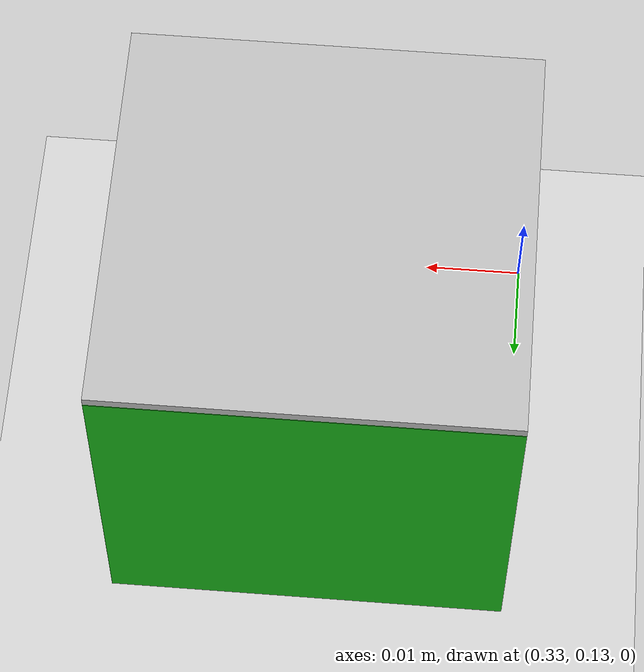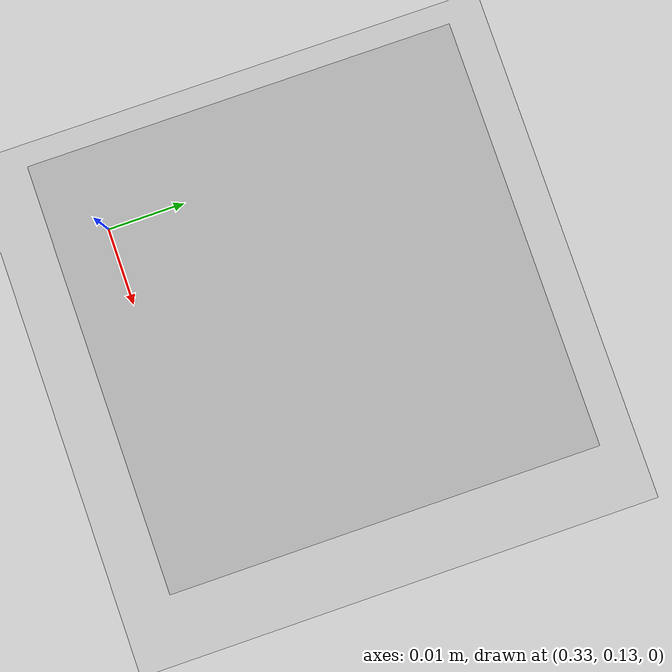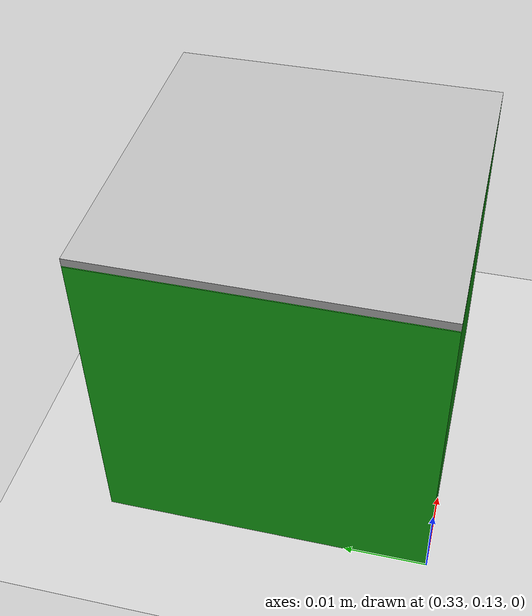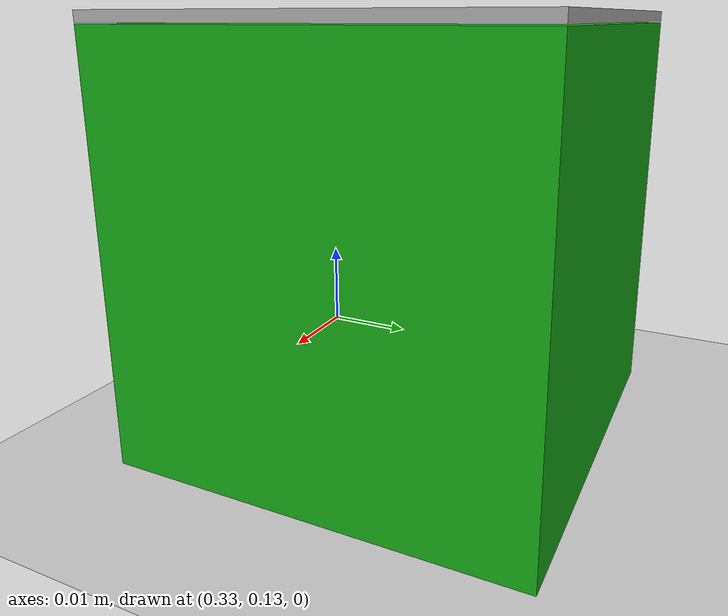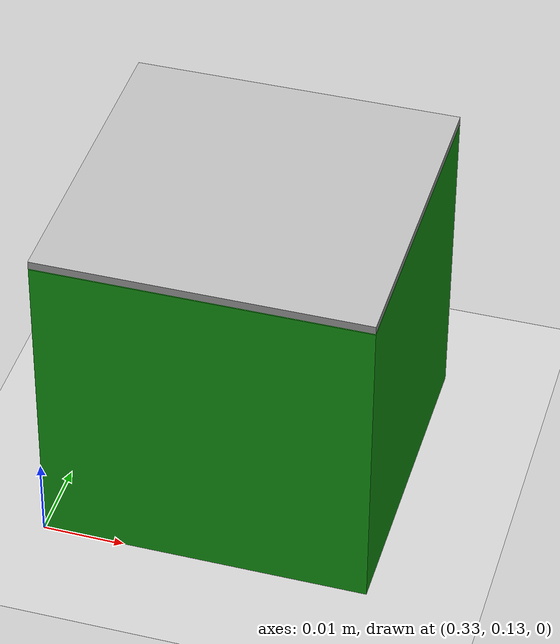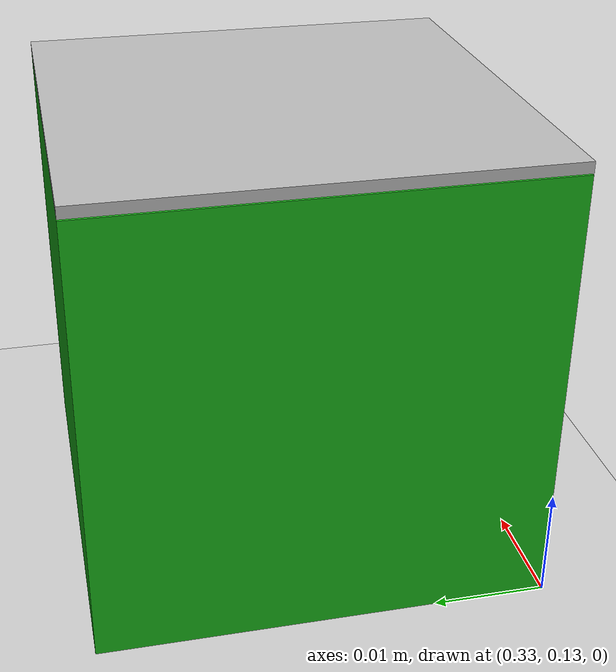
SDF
<?xml version="1.0" ?>
<sdf version="1.6">
  <world name="default">

    <!-- Standard light + ground so things don't fall forever. -->
    <include><uri>model://sun</uri></include>
    <include><uri>model://ground_plane</uri></include>

    <model name="green_block">
      <pose>0.35 0.15 0.02 0 0 0</pose>
      <link name="link">
        <inertial>
          <mass>0.05</mass>
          <inertia ixx="1.3e-5" ixy="0" ixz="0" iyy="1.3e-5" iyz="0" izz="1.3e-5"/>
        </inertial>
        <collision name="collision">
          <geometry><box><size>0.04 0.04 0.04</size></box></geometry>
          <surface>
            <friction><ode><mu>1.0</mu><mu2>1.0</mu2></ode></friction>
          </surface>
        </collision>
        <visual name="visual">
          <geometry><box><size>0.04 0.04 0.04</size></box></geometry>
          <material>
            <ambient>0.1 0.7 0.1 1</ambient>
            <diffuse>0.1 0.7 0.1 1</diffuse>
          </material>
        </visual>
        <visual name="aruco_marker">
          <pose>0 0 0.0206 0 0 0</pose>
          <geometry><box><size>0.04 0.04 0.001</size></box></geometry>
          <material>
            <script>
              <uri>model://aruco_marker/materials/scripts</uri>
              <uri>model://aruco_marker/materials/textures</uri>
              <name>ArucoMarker/Marker0</name>
            </script>
          </material>
        </visual>
      </link>
    </model>

  </world>
</sdf>
